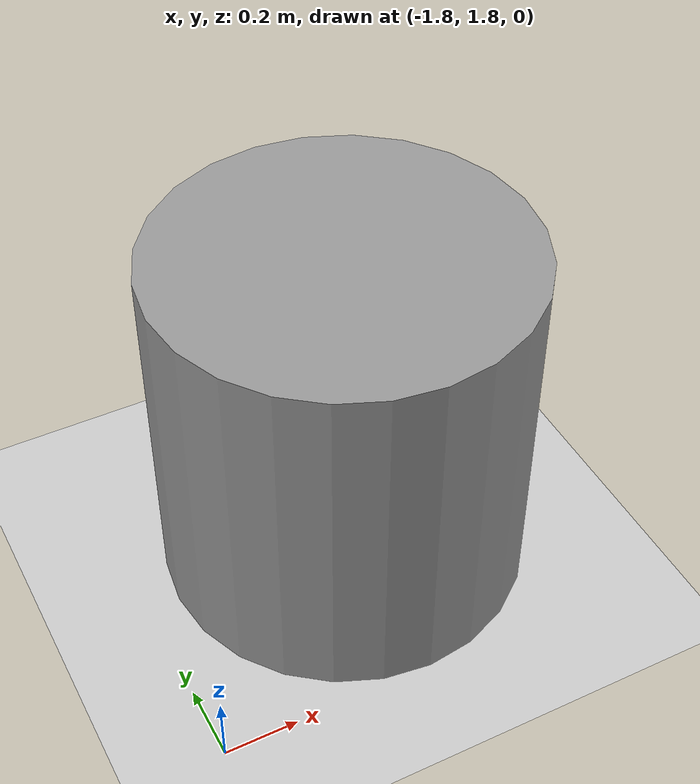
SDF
<?xml version="1.0" ?>
<sdf version='1.7'>
  <world name='world_learning'>

    <!-- Light source -->
    <light name='sun' type='directional'>
      <cast_shadows>1</cast_shadows>
      <pose>0 0 10 0 -0 0</pose>
      <diffuse>0.8 0.8 0.8 1</diffuse>
      <specular>0.2 0.2 0.2 1</specular>
      <attenuation>
        <range>1000</range>
        <constant>0.9</constant>
        <linear>0.01</linear>
        <quadratic>0.001</quadratic>
      </attenuation>
      <direction>-0.5 0.1 -0.9</direction>
      <spot>
        <inner_angle>0</inner_angle>
        <outer_angle>0</outer_angle>
        <falloff>0</falloff>
      </spot>
    </light>

    <!-- Physics parameters to improve contact behavior -->
    <physics name="my_physics" type="ode">
      <max_step_size>0.001</max_step_size> <!-- Smaller time step for more accurate simulation -->
      <real_time_factor>1</real_time_factor>
      <real_time_update_rate>1000</real_time_update_rate>

      <ode>
        <solver>
          <type>quick</type>
          <iters>100</iters> <!-- Increase iteration for more accurate physics -->
          <sor>1.3</sor> <!-- Successive Over-Relaxation factor -->
        </solver>

        <constraints>
          <cfm>0.00001</cfm> <!-- Constraint Force Mixing -->
          <erp>0.8</erp> <!-- Error Reduction Parameter -->
        </constraints>
      </ode>
    </physics>

    <!-- A simple flat ground plane -->
    <model name='ground_plane'>
      <static>1</static>
      <link name='ground_link'>
        <collision name='ground_collision'>
          <geometry>
            <plane>
              <normal>0 0 1</normal>
              <size>100 100</size>
            </plane>
          </geometry>
          <surface>
            <contact>
              <ode>
                <soft_cfm>0.00001</soft_cfm> <!-- Soft Constraint Force Mixing -->
                <soft_erp>0.8</soft_erp> <!-- Soft Error Reduction Parameter -->
                <kp>1000000.0</kp> <!-- Contact stiffness -->
                <kd>500.0</kd> <!-- Contact damping -->
              </ode>
            </contact>
            <friction>
              <ode>
                <mu>100</mu>
                <mu2>50</mu2>
              </ode>
              <torsional>
                <ode/>
              </torsional>
            </friction>
            <bounce/>
          </surface>
          <max_contacts>10</max_contacts>
        </collision>
        <visual name='ground_visual'>
          <cast_shadows>0</cast_shadows>
          <geometry>
            <plane>
              <normal>0 0 1</normal>
              <size>100 100</size>
            </plane>
          </geometry>
          <material>
            <script>
              <uri>file://media/materials/scripts/gazebo.material</uri>
              <name>Gazebo/Grey</name>
            </script>
          </material>
        </visual>
        <self_collide>0</self_collide>
        <enable_wind>0</enable_wind>
        <kinematic>0</kinematic>
      </link>
    </model>

    <gravity>0 0 -9.8</gravity>
    <magnetic_field>6e-06 2.3e-05 -4.2e-05</magnetic_field>
    <atmosphere type='adiabatic'/>

    <physics type='ode'>
      <max_step_size>0.001</max_step_size>
      <real_time_factor>1</real_time_factor>
      <real_time_update_rate>1000</real_time_update_rate>
    </physics>

    <scene>
      <ambient>0.4 0.4 0.4 1</ambient>
      <background>0.7 0.7 0.7 1</background>
      <shadows>1</shadows>
    </scene>

    <audio>
      <device>default</device>
    </audio>

    <wind/>
    <spherical_coordinates>
      <surface_model>EARTH_WGS84</surface_model>
      <latitude_deg>0</latitude_deg>
      <longitude_deg>0</longitude_deg>
      <elevation>0</elevation>
      <heading_deg>0</heading_deg>
    </spherical_coordinates>

    <model name='unit_cylinder'>
      <pose>-1.21399 2.30046 0.5 0 -0 0</pose>
      <link name='cylinder_link'>
        <inertial>
          <mass>1</mass>
          <inertia>
            <ixx>0.145833</ixx>
            <ixy>0</ixy>
            <ixz>0</ixz>
            <iyy>0.145833</iyy>
            <iyz>0</iyz>
            <izz>0.125</izz>
          </inertia>
          <pose>0 0 0 0 -0 0</pose>
        </inertial>
        <collision name='cylinder_collision'>
          <geometry>
            <cylinder>
              <radius>0.5</radius>
              <length>1</length>
            </cylinder>
          </geometry>
          <max_contacts>10</max_contacts>
          <surface>
            <contact>
              <ode/>
            </contact>
            <bounce/>
            <friction>
              <torsional>
                <ode/>
              </torsional>
              <ode/>
            </friction>
          </surface>
        </collision>
        <visual name='cylinder_visual'>
          <geometry>
            <cylinder>
              <radius>0.5</radius>
              <length>1</length>
            </cylinder>
          </geometry>
          <material>
            <script>
              <name>Gazebo/Grey</name>
              <uri>file://media/materials/scripts/gazebo.material</uri>
            </script>
          </material>
        </visual>
        <self_collide>0</self_collide>
        <enable_wind>0</enable_wind>
        <kinematic>0</kinematic>
      </link>
    </model>

    <gui fullscreen='0'>
      <camera name='user_camera'>
        <pose>5 -5 2 0 0.275643 2.35619</pose>
        <view_controller>orbit</view_controller>
        <projection_type>perspective</projection_type>
      </camera>
    </gui>
  </world>
</sdf>
